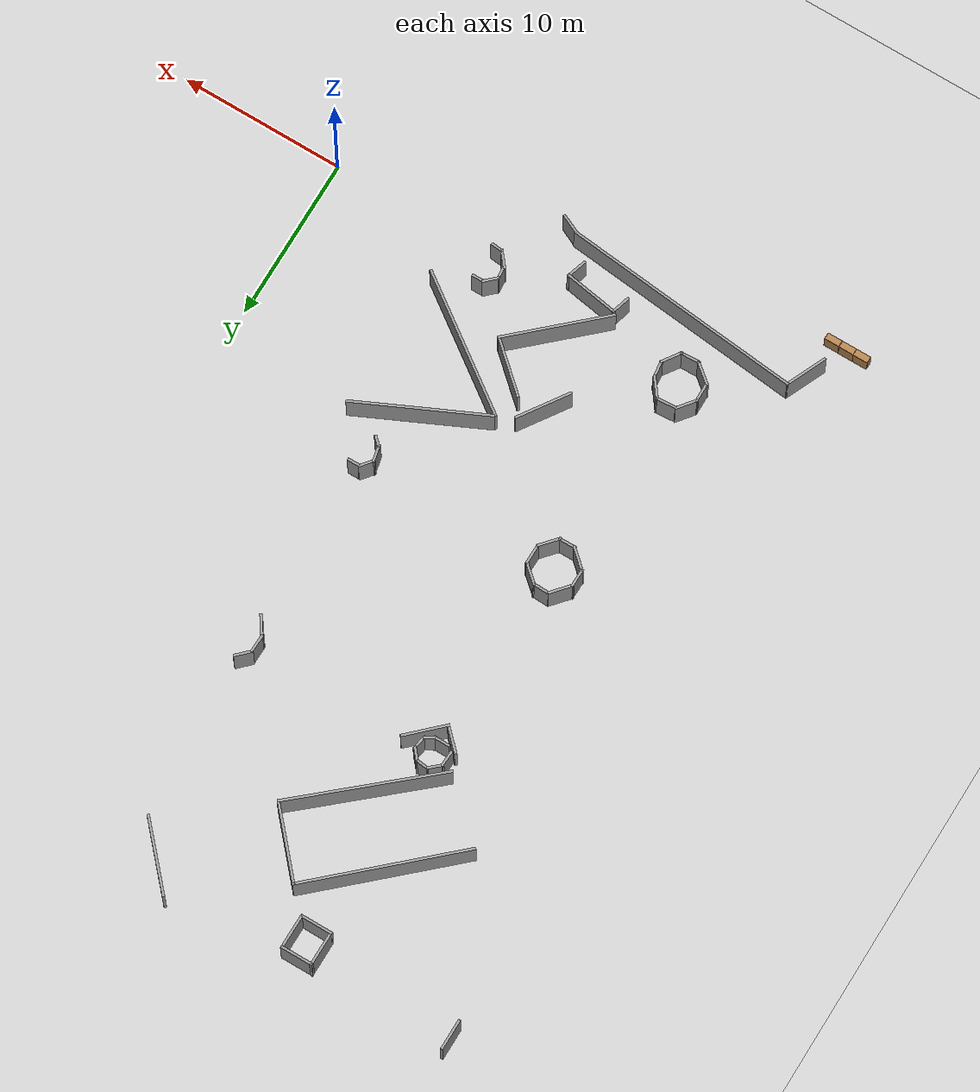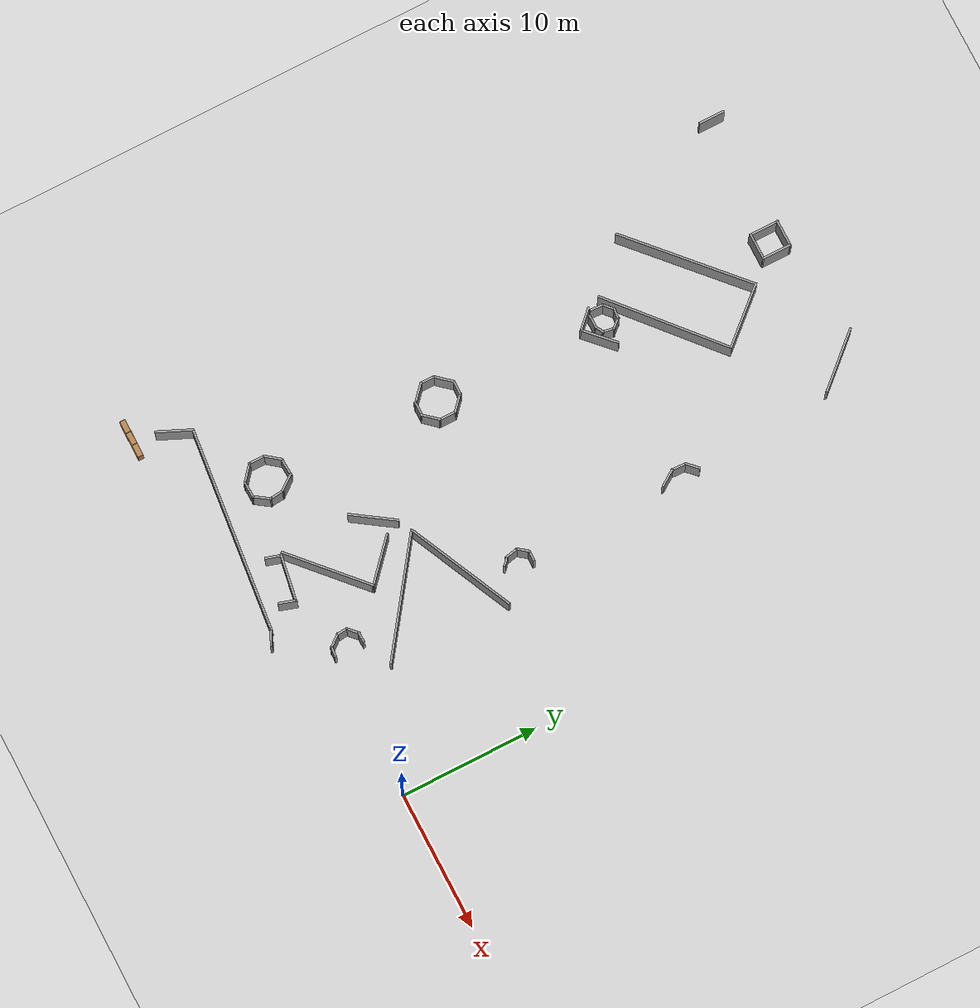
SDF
<sdf version="1.6">
 <world name="default">
  <model name="ground_plane">
   <static>1</static>
   <link name="link">
    <collision name="collision">
     <geometry><plane><normal>0 0 1</normal><size>100 100</size></plane></geometry>
     <surface><friction><ode><mu>100</mu><mu2>50</mu2></ode></friction></surface>
    </collision>
    <visual name="visual">
     <cast_shadows>0</cast_shadows>
     <geometry><plane><normal>0 0 1</normal><size>100 100</size></plane></geometry>
     <material>
      <script><uri>file://media/materials/scripts/gazebo.material</uri><name>Gazebo/Grey</name></script>
     </material>
    </visual>
   </link>
  </model>
  <model name="mall_new_reduce_size">
   <pose>-6.8092 7.5529 0 0 -0 0</pose>
   <link name="Wall_262">
    <collision name="Wall_262_Collision">
     <geometry><box><size>8.27755 0.15 2.5</size></box></geometry>
     <pose>0 0 1.25 0 -0 0</pose>
    </collision>
    <visual name="Wall_262_Visual">
     <pose>0 0 1.25 0 -0 0</pose>
     <geometry><box><size>8.27755 0.15 2.5</size></box></geometry>
     <material>
      <script><uri>file://media/materials/scripts/gazebo.material</uri><name>Gazebo/Grey</name></script>
      <ambient>1 1 1 1</ambient>
     </material>
     <meta><layer>0</layer></meta>
    </visual>
    <pose>-4.89745 2.80266 0 0 -0 0.439294</pose>
   </link>
   <link name="Wall_264">
    <collision name="Wall_264_Collision">
     <geometry><box><size>9.26002 0.15 2.5</size></box></geometry>
     <pose>0 0 1.25 0 -0 0</pose>
    </collision>
    <visual name="Wall_264_Visual">
     <pose>0 0 1.25 0 -0 0</pose>
     <geometry><box><size>9.26002 0.15 2.5</size></box></geometry>
     <material>
      <script><uri>file://media/materials/scripts/gazebo.material</uri><name>Gazebo/Grey</name></script>
      <ambient>1 1 1 1</ambient>
     </material>
     <meta><layer>0</layer></meta>
    </visual>
    <pose>-4.95834 -1.66721 0 0 -0 2.51669</pose>
   </link>
   <link name="Wall_267">
    <collision name="Wall_267_Collision">
     <geometry><box><size>0.820925 0.15 2.5</size></box></geometry>
     <pose>0 0 1.25 0 -0 0</pose>
    </collision>
    <visual name="Wall_267_Visual">
     <pose>0 0 1.25 0 -0 0</pose>
     <geometry><box><size>0.820925 0.15 2.5</size></box></geometry>
     <material>
      <script><uri>file://media/materials/scripts/gazebo.material</uri><name>Gazebo/Grey</name></script>
      <ambient>1 1 1 1</ambient>
     </material>
     <meta><layer>0</layer></meta>
    </visual>
    <pose>-4.64546 -6.23474 0 0 -0 1.67128</pose>
   </link>
   <link name="Wall_268">
    <collision name="Wall_268_Collision">
     <geometry><box><size>1.02099 0.15 2.5</size></box></geometry>
     <pose>0 0 1.25 0 -0 0</pose>
    </collision>
    <visual name="Wall_268_Visual">
     <pose>0 0 1.25 0 -0 0</pose>
     <geometry><box><size>1.02099 0.15 2.5</size></box></geometry>
     <material>
      <script><uri>file://media/materials/scripts/gazebo.material</uri><name>Gazebo/Grey</name></script>
      <ambient>1 1 1 1</ambient>
     </material>
     <meta><layer>0</layer></meta>
    </visual>
    <pose>-4.34926 -5.61512 0 0 -0 0.761586</pose>
   </link>
   <link name="Wall_269">
    <collision name="Wall_269_Collision">
     <geometry><box><size>0.764839 0.15 2.5</size></box></geometry>
     <pose>0 0 1.25 0 -0 0</pose>
    </collision>
    <visual name="Wall_269_Visual">
     <pose>0 0 1.25 0 -0 0</pose>
     <geometry><box><size>0.764839 0.15 2.5</size></box></geometry>
     <material>
      <script><uri>file://media/materials/scripts/gazebo.material</uri><name>Gazebo/Grey</name></script>
      <ambient>1 1 1 1</ambient>
     </material>
     <meta><layer>0</layer></meta>
    </visual>
    <pose>-3.71208 -5.32193 0 0 -0 0.023853</pose>
   </link>
   <link name="Wall_273">
    <collision name="Wall_273_Collision">
     <geometry><box><size>0.777136 0.15 2.5</size></box></geometry>
     <pose>0 0 1.25 0 -0 0</pose>
    </collision>
    <visual name="Wall_273_Visual">
     <pose>0 0 1.25 0 -0 0</pose>
     <geometry><box><size>0.777136 0.15 2.5</size></box></geometry>
     <material>
      <script><uri>file://media/materials/scripts/gazebo.material</uri><name>Gazebo/Grey</name></script>
      <ambient>1 1 1 1</ambient>
     </material>
     <meta><layer>0</layer></meta>
    </visual>
    <pose>-3.68436 -7.41023 0 0 -0 3.05721</pose>
   </link>
   <link name="Wall_274">
    <collision name="Wall_274_Collision">
     <geometry><box><size>1.15435 0.15 2.5</size></box></geometry>
     <pose>0 0 1.25 0 -0 0</pose>
    </collision>
    <visual name="Wall_274_Visual">
     <pose>0 0 1.25 0 -0 0</pose>
     <geometry><box><size>1.15435 0.15 2.5</size></box></geometry>
     <material>
      <script><uri>file://media/materials/scripts/gazebo.material</uri><name>Gazebo/Grey</name></script>
      <ambient>1 1 1 1</ambient>
     </material>
     <meta><layer>0</layer></meta>
    </visual>
    <pose>-4.31455 -7.00602 0 0 -0 2.25587</pose>
   </link>
   <link name="Wall_284">
    <collision name="Wall_284_Collision">
     <geometry><box><size>1.3189 0.15 2.5</size></box></geometry>
     <pose>0 0 1.25 0 -0 0</pose>
    </collision>
    <visual name="Wall_284_Visual">
     <pose>0 0 1.25 0 -0 0</pose>
     <geometry><box><size>1.3189 0.15 2.5</size></box></geometry>
     <material>
      <script><uri>file://media/materials/scripts/gazebo.material</uri><name>Gazebo/Grey</name></script>
      <ambient>1 1 1 1</ambient>
     </material>
     <meta><layer>0</layer></meta>
    </visual>
    <pose>-8.11493 -8.61894 0 0 -0 1.26497</pose>
   </link>
   <link name="Wall_285">
    <collision name="Wall_285_Collision">
     <geometry><box><size>3.37777 0.15 2.5</size></box></geometry>
     <pose>0 0 1.25 0 -0 0</pose>
    </collision>
    <visual name="Wall_285_Visual">
     <pose>0 0 1.25 0 -0 0</pose>
     <geometry><box><size>3.37777 0.15 2.5</size></box></geometry>
     <material>
      <script><uri>file://media/materials/scripts/gazebo.material</uri><name>Gazebo/Grey</name></script>
      <ambient>1 1 1 1</ambient>
     </material>
     <meta><layer>0</layer></meta>
    </visual>
    <pose>-9.56079 -7.81441 0 0 -0 2.97862</pose>
   </link>
   <link name="Wall_286">
    <collision name="Wall_286_Collision">
     <geometry><box><size>1.21161 0.15 2.5</size></box></geometry>
     <pose>0 0 1.25 0 -0 0</pose>
    </collision>
    <visual name="Wall_286_Visual">
     <pose>0 0 1.25 0 -0 0</pose>
     <geometry><box><size>1.21161 0.15 2.5</size></box></geometry>
     <material>
      <script><uri>file://media/materials/scripts/gazebo.material</uri><name>Gazebo/Grey</name></script>
      <ambient>1 1 1 1</ambient>
     </material>
     <meta><layer>0</layer></meta>
    </visual>
    <pose>-11.2883 -8.06181 0 0 -0 -1.85667</pose>
   </link>
   <link name="Wall_289">
    <collision name="Wall_289_Collision">
     <geometry><box><size>3.74389 0.15 2.5</size></box></geometry>
     <pose>0 0 1.25 0 -0 0</pose>
    </collision>
    <visual name="Wall_289_Visual">
     <pose>0 0 1.25 0 -0 0</pose>
     <geometry><box><size>3.74389 0.15 2.5</size></box></geometry>
     <material>
      <script><uri>file://media/materials/scripts/gazebo.material</uri><name>Gazebo/Grey</name></script>
      <ambient>1 1 1 1</ambient>
     </material>
     <meta><layer>0</layer></meta>
    </visual>
    <pose>-7.8177 -1.7822 0 0 -0 -0.730552</pose>
   </link>
   <link name="Wall_293">
    <collision name="Wall_293_Collision">
     <geometry><box><size>6.69055 0.15 2.5</size></box></geometry>
     <pose>0 0 1.25 0 -0 0</pose>
    </collision>
    <visual name="Wall_293_Visual">
     <pose>0 0 1.25 0 -0 0</pose>
     <geometry><box><size>6.69055 0.15 2.5</size></box></geometry>
     <material>
      <script><uri>file://media/materials/scripts/gazebo.material</uri><name>Gazebo/Grey</name></script>
      <ambient>1 1 1 1</ambient>
     </material>
     <meta><layer>0</layer></meta>
    </visual>
    <pose>-8.88827 -5.19299 0 0 -0 -2.39885</pose>
   </link>
   <link name="Wall_296">
    <collision name="Wall_296_Collision">
     <geometry><box><size>3.4822 0.15 2.5</size></box></geometry>
     <pose>0 0 1.25 0 -0 0</pose>
    </collision>
    <visual name="Wall_296_Visual">
     <pose>0 0 1.25 0 -0 0</pose>
     <geometry><box><size>3.4822 0.15 2.5</size></box></geometry>
     <material>
      <script><uri>file://media/materials/scripts/gazebo.material</uri><name>Gazebo/Grey</name></script>
      <ambient>1 1 1 1</ambient>
     </material>
     <meta><layer>0</layer></meta>
    </visual>
    <pose>-10.6311 -0.878716 0 0 -0 -2.16478</pose>
   </link>
   <link name="Wall_299">
    <collision name="Wall_299_Collision">
     <geometry><box><size>1.25244 0.15 2.5</size></box></geometry>
     <pose>0 0 1.25 0 -0 0</pose>
    </collision>
    <visual name="Wall_299_Visual">
     <pose>0 0 1.25 0 -0 0</pose>
     <geometry><box><size>1.25244 0.15 2.5</size></box></geometry>
     <material>
      <script><uri>file://media/materials/scripts/gazebo.material</uri><name>Gazebo/Grey</name></script>
      <ambient>1 1 1 1</ambient>
     </material>
     <meta><layer>0</layer></meta>
    </visual>
    <pose>-16.3634 -4.50577 0 0 -0 0.066556</pose>
   </link>
   <link name="Wall_300">
    <collision name="Wall_300_Collision">
     <geometry><box><size>1.44179 0.15 2.5</size></box></geometry>
     <pose>0 0 1.25 0 -0 0</pose>
    </collision>
    <visual name="Wall_300_Visual">
     <pose>0 0 1.25 0 -0 0</pose>
     <geometry><box><size>1.44179 0.15 2.5</size></box></geometry>
     <material>
      <script><uri>file://media/materials/scripts/gazebo.material</uri><name>Gazebo/Grey</name></script>
      <ambient>1 1 1 1</ambient>
     </material>
     <meta><layer>0</layer></meta>
    </visual>
    <pose>-15.4086 -4.98387 0 0 -0 -0.922283</pose>
   </link>
   <link name="Wall_301">
    <collision name="Wall_301_Collision">
     <geometry><box><size>1.09033 0.15 2.5</size></box></geometry>
     <pose>0 0 1.25 0 -0 0</pose>
    </collision>
    <visual name="Wall_301_Visual">
     <pose>0 0 1.25 0 -0 0</pose>
     <geometry><box><size>1.09033 0.15 2.5</size></box></geometry>
     <material>
      <script><uri>file://media/materials/scripts/gazebo.material</uri><name>Gazebo/Grey</name></script>
      <ambient>1 1 1 1</ambient>
     </material>
     <meta><layer>0</layer></meta>
    </visual>
    <pose>-14.9682 -5.95144 0 0 -0 -1.4636</pose>
   </link>
   <link name="Wall_302">
    <collision name="Wall_302_Collision">
     <geometry><box><size>1.37103 0.15 2.5</size></box></geometry>
     <pose>0 0 1.25 0 -0 0</pose>
    </collision>
    <visual name="Wall_302_Visual">
     <pose>0 0 1.25 0 -0 0</pose>
     <geometry><box><size>1.37103 0.15 2.5</size></box></geometry>
     <material>
      <script><uri>file://media/materials/scripts/gazebo.material</uri><name>Gazebo/Grey</name></script>
      <ambient>1 1 1 1</ambient>
     </material>
     <meta><layer>0</layer></meta>
    </visual>
    <pose>-15.2636 -6.93047 0 0 -0 -2.17283</pose>
   </link>
   <link name="Wall_303">
    <collision name="Wall_303_Collision">
     <geometry><box><size>1.23632 0.15 2.5</size></box></geometry>
     <pose>0 0 1.25 0 -0 0</pose>
    </collision>
    <visual name="Wall_303_Visual">
     <pose>0 0 1.25 0 -0 0</pose>
     <geometry><box><size>1.23632 0.15 2.5</size></box></geometry>
     <material>
      <script><uri>file://media/materials/scripts/gazebo.material</uri><name>Gazebo/Grey</name></script>
      <ambient>1 1 1 1</ambient>
     </material>
     <meta><layer>0</layer></meta>
    </visual>
    <pose>-16.1437 -7.44622 0 0 -0 -3.10299</pose>
   </link>
   <link name="Wall_304">
    <collision name="Wall_304_Collision">
     <geometry><box><size>1.52701 0.15 2.5</size></box></geometry>
     <pose>0 0 1.25 0 -0 0</pose>
    </collision>
    <visual name="Wall_304_Visual">
     <pose>0 0 1.25 0 -0 0</pose>
     <geometry><box><size>1.52701 0.15 2.5</size></box></geometry>
     <material>
      <script><uri>file://media/materials/scripts/gazebo.material</uri><name>Gazebo/Grey</name></script>
      <ambient>1 1 1 1</ambient>
     </material>
     <meta><layer>0</layer></meta>
    </visual>
    <pose>-17.2005 -7.03707 0 0 -0 2.45115</pose>
   </link>
   <link name="Wall_305">
    <collision name="Wall_305_Collision">
     <geometry><box><size>1.2495 0.15 2.5</size></box></geometry>
     <pose>0 0 1.25 0 -0 0</pose>
    </collision>
    <visual name="Wall_305_Visual">
     <pose>0 0 1.25 0 -0 0</pose>
     <geometry><box><size>1.2495 0.15 2.5</size></box></geometry>
     <material>
      <script><uri>file://media/materials/scripts/gazebo.material</uri><name>Gazebo/Grey</name></script>
      <ambient>1 1 1 1</ambient>
     </material>
     <meta><layer>0</layer></meta>
    </visual>
    <pose>-17.7276 -6.04885 0 0 -0 1.57925</pose>
   </link>
   <link name="Wall_306">
    <collision name="Wall_306_Collision">
     <geometry><box><size>1.3668 0.15 2.5</size></box></geometry>
     <pose>0 0 1.25 0 -0 0</pose>
    </collision>
    <visual name="Wall_306_Visual">
     <pose>0 0 1.25 0 -0 0</pose>
     <geometry><box><size>1.3668 0.15 2.5</size></box></geometry>
     <material>
      <script><uri>file://media/materials/scripts/gazebo.material</uri><name>Gazebo/Grey</name></script>
      <ambient>1 1 1 1</ambient>
     </material>
     <meta><layer>0</layer></meta>
    </visual>
    <pose>-17.3575 -5.01145 0 0 -0 0.907215</pose>
   </link>
   <link name="Wall_309">
    <collision name="Wall_309_Collision">
     <geometry><box><size>2.66375 0.15 2.5</size></box></geometry>
     <pose>0 0 1.25 0 -0 0</pose>
    </collision>
    <visual name="Wall_309_Visual">
     <pose>0 0 1.25 0 -0 0</pose>
     <geometry><box><size>2.66375 0.15 2.5</size></box></geometry>
     <material>
      <script><uri>file://media/materials/scripts/gazebo.material</uri><name>Gazebo/Grey</name></script>
      <ambient>1 1 1 1</ambient>
     </material>
     <meta><layer>0</layer></meta>
    </visual>
    <pose>-22.0492 -10.0757 0 0 -0 1.15356</pose>
   </link>
   <link name="Wall_310">
    <collision name="Wall_310_Collision">
     <geometry><box><size>14.7966 0.15 2.5</size></box></geometry>
     <pose>0 0 1.25 0 -0 0</pose>
    </collision>
    <visual name="Wall_310_Visual">
     <pose>0 0 1.25 0 -0 0</pose>
     <geometry><box><size>14.7966 0.15 2.5</size></box></geometry>
     <material>
      <script><uri>file://media/materials/scripts/gazebo.material</uri><name>Gazebo/Grey</name></script>
      <ambient>1 1 1 1</ambient>
     </material>
     <meta><layer>0</layer></meta>
    </visual>
    <pose>-14.2431 -9.68361 0 0 -0 -0.103547</pose>
   </link>
   <link name="Wall_311">
    <collision name="Wall_311_Collision">
     <geometry><box><size>1.25215 0.15 2.5</size></box></geometry>
     <pose>0 0 1.25 0 -0 0</pose>
    </collision>
    <visual name="Wall_311_Visual">
     <pose>0 0 1.25 0 -0 0</pose>
     <geometry><box><size>1.25215 0.15 2.5</size></box></geometry>
     <material>
      <script><uri>file://media/materials/scripts/gazebo.material</uri><name>Gazebo/Grey</name></script>
      <ambient>1 1 1 1</ambient>
     </material>
     <meta><layer>0</layer></meta>
    </visual>
    <pose>-6.46 -10.6998 0 0 -0 -0.437998</pose>
   </link>
   <link name="Wall_320">
    <collision name="Wall_320_Collision">
     <geometry><box><size>0.75 0.15 2.5</size></box></geometry>
     <pose>0 0 1.25 0 -0 0</pose>
    </collision>
    <visual name="Wall_320_Visual">
     <pose>0 0 1.25 0 -0 0</pose>
     <geometry><box><size>0.75 0.15 2.5</size></box></geometry>
     <material>
      <script><uri>file://media/materials/scripts/gazebo.material</uri><name>Gazebo/Grey</name></script>
      <ambient>1 1 1 1</ambient>
     </material>
     <meta><layer>0</layer></meta>
    </visual>
    <pose>-3.3723 7.36494 0 0 -0 0</pose>
   </link>
   <link name="Wall_325">
    <collision name="Wall_325_Collision">
     <geometry><box><size>0.725352 0.15 2.5</size></box></geometry>
     <pose>0 0 1.25 0 -0 0</pose>
    </collision>
    <visual name="Wall_325_Visual">
     <pose>0 0 1.25 0 -0 0</pose>
     <geometry><box><size>0.725352 0.15 2.5</size></box></geometry>
     <material>
      <script><uri>file://media/materials/scripts/gazebo.material</uri><name>Gazebo/Grey</name></script>
      <ambient>1 1 1 1</ambient>
     </material>
     <meta><layer>0</layer></meta>
    </visual>
    <pose>-3.85498 5.66037 0 0 -0 2.39175</pose>
   </link>
   <link name="Wall_326">
    <collision name="Wall_326_Collision">
     <geometry><box><size>1.06843 0.15 2.5</size></box></geometry>
     <pose>0 0 1.25 0 -0 0</pose>
    </collision>
    <visual name="Wall_326_Visual">
     <pose>0 0 1.25 0 -0 0</pose>
     <geometry><box><size>1.06843 0.15 2.5</size></box></geometry>
     <material>
      <script><uri>file://media/materials/scripts/gazebo.material</uri><name>Gazebo/Grey</name></script>
      <ambient>1 1 1 1</ambient>
     </material>
     <meta><layer>0</layer></meta>
    </visual>
    <pose>-4.18171 6.28601 0 0 -0 1.78347</pose>
   </link>
   <link name="Wall_327">
    <collision name="Wall_327_Collision">
     <geometry><box><size>0.999026 0.15 2.5</size></box></geometry>
     <pose>0 0 1.25 0 -0 0</pose>
    </collision>
    <visual name="Wall_327_Visual">
     <pose>0 0 1.25 0 -0 0</pose>
     <geometry><box><size>0.999026 0.15 2.5</size></box></geometry>
     <material>
      <script><uri>file://media/materials/scripts/gazebo.material</uri><name>Gazebo/Grey</name></script>
      <ambient>1 1 1 1</ambient>
     </material>
     <meta><layer>0</layer></meta>
    </visual>
    <pose>-4.0137 7.04728 0 0 -0 0.8968</pose>
   </link>
   <link name="Wall_330">
    <collision name="Wall_330_Collision">
     <geometry><box><size>1.01977 0.15 2.5</size></box></geometry>
     <pose>0 0 1.25 0 -0 0</pose>
    </collision>
    <visual name="Wall_330_Visual">
     <pose>0 0 1.25 0 -0 0</pose>
     <geometry><box><size>1.01977 0.15 2.5</size></box></geometry>
     <material>
      <script><uri>file://media/materials/scripts/gazebo.material</uri><name>Gazebo/Grey</name></script>
      <ambient>1 1 1 1</ambient>
     </material>
     <meta><layer>0</layer></meta>
    </visual>
    <pose>-15.936 8.2086 0 0 -0 -0.033263</pose>
   </link>
   <link name="Wall_331">
    <collision name="Wall_331_Collision">
     <geometry><box><size>1.45443 0.15 2.5</size></box></geometry>
     <pose>0 0 1.25 0 -0 0</pose>
    </collision>
    <visual name="Wall_331_Visual">
     <pose>0 0 1.25 0 -0 0</pose>
     <geometry><box><size>1.45443 0.15 2.5</size></box></geometry>
     <material>
      <script><uri>file://media/materials/scripts/gazebo.material</uri><name>Gazebo/Grey</name></script>
      <ambient>1 1 1 1</ambient>
     </material>
     <meta><layer>0</layer></meta>
    </visual>
    <pose>-15.0144 7.76987 0 0 -0 -0.727873</pose>
   </link>
   <link name="Wall_332">
    <collision name="Wall_332_Collision">
     <geometry><box><size>1.29894 0.15 2.5</size></box></geometry>
     <pose>0 0 1.25 0 -0 0</pose>
    </collision>
    <visual name="Wall_332_Visual">
     <pose>0 0 1.25 0 -0 0</pose>
     <geometry><box><size>1.29894 0.15 2.5</size></box></geometry>
     <material>
      <script><uri>file://media/materials/scripts/gazebo.material</uri><name>Gazebo/Grey</name></script>
      <ambient>1 1 1 1</ambient>
     </material>
     <meta><layer>0</layer></meta>
    </visual>
    <pose>-14.5323 6.75187 0 0 -0 -1.57919</pose>
   </link>
   <link name="Wall_333">
    <collision name="Wall_333_Collision">
     <geometry><box><size>1.40407 0.15 2.5</size></box></geometry>
     <pose>0 0 1.25 0 -0 0</pose>
    </collision>
    <visual name="Wall_333_Visual">
     <pose>0 0 1.25 0 -0 0</pose>
     <geometry><box><size>1.40407 0.15 2.5</size></box></geometry>
     <material>
      <script><uri>file://media/materials/scripts/gazebo.material</uri><name>Gazebo/Grey</name></script>
      <ambient>1 1 1 1</ambient>
     </material>
     <meta><layer>0</layer></meta>
    </visual>
    <pose>-14.9612 5.70636 0 0 -0 -2.29237</pose>
   </link>
   <link name="Wall_334">
    <collision name="Wall_334_Collision">
     <geometry><box><size>1.10611 0.15 2.5</size></box></geometry>
     <pose>0 0 1.25 0 -0 0</pose>
    </collision>
    <visual name="Wall_334_Visual">
     <pose>0 0 1.25 0 -0 0</pose>
     <geometry><box><size>1.10611 0.15 2.5</size></box></geometry>
     <material>
      <script><uri>file://media/materials/scripts/gazebo.material</uri><name>Gazebo/Grey</name></script>
      <ambient>1 1 1 1</ambient>
     </material>
     <meta><layer>0</layer></meta>
    </visual>
    <pose>-15.8537 5.24013 0 0 -0 -3.13151</pose>
   </link>
   <link name="Wall_335">
    <collision name="Wall_335_Collision">
     <geometry><box><size>1.56516 0.15 2.5</size></box></geometry>
     <pose>0 0 1.25 0 -0 0</pose>
    </collision>
    <visual name="Wall_335_Visual">
     <pose>0 0 1.25 0 -0 0</pose>
     <geometry><box><size>1.56516 0.15 2.5</size></box></geometry>
     <material>
      <script><uri>file://media/materials/scripts/gazebo.material</uri><name>Gazebo/Grey</name></script>
      <ambient>1 1 1 1</ambient>
     </material>
     <meta><layer>0</layer></meta>
    </visual>
    <pose>-16.8295 5.70779 0 0 -0 2.41041</pose>
   </link>
   <link name="Wall_336">
    <collision name="Wall_336_Collision">
     <geometry><box><size>1.15225 0.15 2.5</size></box></geometry>
     <pose>0 0 1.25 0 -0 0</pose>
    </collision>
    <visual name="Wall_336_Visual">
     <pose>0 0 1.25 0 -0 0</pose>
     <geometry><box><size>1.15225 0.15 2.5</size></box></geometry>
     <material>
      <script><uri>file://media/materials/scripts/gazebo.material</uri><name>Gazebo/Grey</name></script>
      <ambient>1 1 1 1</ambient>
     </material>
     <meta><layer>0</layer></meta>
    </visual>
    <pose>-17.3514 6.67174 0 0 -0 1.56118</pose>
   </link>
   <link name="Wall_337">
    <collision name="Wall_337_Collision">
     <geometry><box><size>1.51537 0.15 2.5</size></box></geometry>
     <pose>0 0 1.25 0 -0 0</pose>
    </collision>
    <visual name="Wall_337_Visual">
     <pose>0 0 1.25 0 -0 0</pose>
     <geometry><box><size>1.51537 0.15 2.5</size></box></geometry>
     <material>
      <script><uri>file://media/materials/scripts/gazebo.material</uri><name>Gazebo/Grey</name></script>
      <ambient>1 1 1 1</ambient>
     </material>
     <meta><layer>0</layer></meta>
    </visual>
    <pose>-16.9005 7.68 0 0 -0 0.858721</pose>
   </link>
   <link name="Wall_42">
    <collision name="Wall_42_Collision">
     <geometry><box><size>1.90642 0.15 2.5</size></box></geometry>
     <pose>0 0 1.25 0 -0 0</pose>
    </collision>
    <visual name="Wall_42_Visual">
     <pose>0 0 1.25 0 -0 0</pose>
     <geometry><box><size>1.90642 0.15 2.5</size></box></geometry>
     <material>
      <script><uri>file://media/materials/scripts/gazebo.material</uri><name>Gazebo/Grey</name></script>
      <ambient>1 1 1 1</ambient>
     </material>
     <meta><layer>0</layer></meta>
    </visual>
    <pose>-24.7208 32.1883 0 0 -0 1.57103</pose>
   </link>
   <link name="Wall_45">
    <collision name="Wall_45_Collision">
     <geometry><box><size>2.19239 0.15 2.5</size></box></geometry>
     <pose>0 0 1.25 0 -0 0</pose>
    </collision>
    <visual name="Wall_45_Visual">
     <pose>0 0 1.25 0 -0 0</pose>
     <geometry><box><size>2.19239 0.15 2.5</size></box></geometry>
     <material>
      <script><uri>file://media/materials/scripts/gazebo.material</uri><name>Gazebo/Grey</name></script>
      <ambient>1 1 1 1</ambient>
     </material>
     <meta><layer>0</layer></meta>
    </visual>
    <pose>-16.247 31.7587 0 0 -0 -1.5708</pose>
   </link>
   <link name="Wall_46">
    <collision name="Wall_46_Collision">
     <geometry><box><size>2 0.15 2.5</size></box></geometry>
     <pose>0 0 1.25 0 -0 0</pose>
    </collision>
    <visual name="Wall_46_Visual">
     <pose>0 0 1.25 0 -0 0</pose>
     <geometry><box><size>2 0.15 2.5</size></box></geometry>
     <material>
      <script><uri>file://media/materials/scripts/gazebo.material</uri><name>Gazebo/Grey</name></script>
      <ambient>1 1 1 1</ambient>
     </material>
     <meta><layer>0</layer></meta>
    </visual>
    <pose>-15.322 30.7375 0 0 -0 0</pose>
   </link>
   <link name="Wall_47">
    <collision name="Wall_47_Collision">
     <geometry><box><size>2.17492 0.15 2.5</size></box></geometry>
     <pose>0 0 1.25 0 -0 0</pose>
    </collision>
    <visual name="Wall_47_Visual">
     <pose>0 0 1.25 0 -0 0</pose>
     <geometry><box><size>2.17492 0.15 2.5</size></box></geometry>
     <material>
      <script><uri>file://media/materials/scripts/gazebo.material</uri><name>Gazebo/Grey</name></script>
      <ambient>1 1 1 1</ambient>
     </material>
     <meta><layer>0</layer></meta>
    </visual>
    <pose>-14.3927 31.7499 0 0 -0 1.56648</pose>
   </link>
   <link name="Wall_48">
    <collision name="Wall_48_Collision">
     <geometry><box><size>2.0172 0.15 2.5</size></box></geometry>
     <pose>0 0 1.25 0 -0 0</pose>
    </collision>
    <visual name="Wall_48_Visual">
     <pose>0 0 1.25 0 -0 0</pose>
     <geometry><box><size>2.0172 0.15 2.5</size></box></geometry>
     <material>
      <script><uri>file://media/materials/scripts/gazebo.material</uri><name>Gazebo/Grey</name></script>
      <ambient>1 1 1 1</ambient>
     </material>
     <meta><layer>0</layer></meta>
    </visual>
    <pose>-15.3219 32.7668 0 0 -0 -3.13691</pose>
   </link>
   <link name="Wall_53">
    <collision name="Wall_53_Collision">
     <geometry><box><size>4.7206 0.15 2.5</size></box></geometry>
     <pose>0 0 1.25 0 -0 0</pose>
    </collision>
    <visual name="Wall_53_Visual">
     <pose>0 0 1.25 0 -0 0</pose>
     <geometry><box><size>4.7206 0.15 2.5</size></box></geometry>
     <material>
      <script><uri>file://media/materials/scripts/gazebo.material</uri><name>Gazebo/Grey</name></script>
      <ambient>1 1 1 1</ambient>
     </material>
     <meta><layer>0</layer></meta>
    </visual>
    <pose>-5.84483 31.9838 0 0 -0 -0.834461</pose>
   </link>
   <link name="Wall_57">
    <collision name="Wall_57_Collision">
     <geometry><box><size>10.1653 0.15 2.5</size></box></geometry>
     <pose>0 0 1.25 0 -0 0</pose>
    </collision>
    <visual name="Wall_57_Visual">
     <pose>0 0 1.25 0 -0 0</pose>
     <geometry><box><size>10.1653 0.15 2.5</size></box></geometry>
     <material>
      <script><uri>file://media/materials/scripts/gazebo.material</uri><name>Gazebo/Grey</name></script>
      <ambient>1 1 1 1</ambient>
     </material>
     <meta><layer>0</layer></meta>
    </visual>
    <pose>-16.7712 26.0648 0 0 -0 0.74156</pose>
   </link>
   <link name="Wall_58">
    <collision name="Wall_58_Collision">
     <geometry><box><size>4.86048 0.15 2.5</size></box></geometry>
     <pose>0 0 1.25 0 -0 0</pose>
    </collision>
    <visual name="Wall_58_Visual">
     <pose>0 0 1.25 0 -0 0</pose>
     <geometry><box><size>4.86048 0.15 2.5</size></box></geometry>
     <material>
      <script><uri>file://media/materials/scripts/gazebo.material</uri><name>Gazebo/Grey</name></script>
      <ambient>1 1 1 1</ambient>
     </material>
     <meta><layer>0</layer></meta>
    </visual>
    <pose>-11.5025 27.6865 0 0 -0 -0.844353</pose>
   </link>
   <link name="Wall_59">
    <collision name="Wall_59_Collision">
     <geometry><box><size>9.7239 0.15 2.5</size></box></geometry>
     <pose>0 0 1.25 0 -0 0</pose>
    </collision>
    <visual name="Wall_59_Visual">
     <pose>0 0 1.25 0 -0 0</pose>
     <geometry><box><size>9.7239 0.15 2.5</size></box></geometry>
     <material>
      <script><uri>file://media/materials/scripts/gazebo.material</uri><name>Gazebo/Grey</name></script>
      <ambient>1 1 1 1</ambient>
     </material>
     <meta><layer>0</layer></meta>
    </visual>
    <pose>-13.5451 22.7671 0 0 -0 -2.42416</pose>
   </link>
   <link name="Wall_62">
    <collision name="Wall_62_Collision">
     <geometry><box><size>1.75 0.15 2.5</size></box></geometry>
     <pose>0 0 1.25 0 -0 0</pose>
    </collision>
    <visual name="Wall_62_Visual">
     <pose>0 0 1.25 0 -0 0</pose>
     <geometry><box><size>1.75 0.15 2.5</size></box></geometry>
     <material>
      <script><uri>file://media/materials/scripts/gazebo.material</uri><name>Gazebo/Grey</name></script>
      <ambient>1 1 1 1</ambient>
     </material>
     <meta><layer>0</layer></meta>
    </visual>
    <pose>-16.2089 18.0457 0 0 -0 -0.785398</pose>
   </link>
   <link name="Wall_63">
    <collision name="Wall_63_Collision">
     <geometry><box><size>2.76682 0.15 2.5</size></box></geometry>
     <pose>0 0 1.25 0 -0 0</pose>
    </collision>
    <visual name="Wall_63_Visual">
     <pose>0 0 1.25 0 -0 0</pose>
     <geometry><box><size>2.76682 0.15 2.5</size></box></geometry>
     <material>
      <script><uri>file://media/materials/scripts/gazebo.material</uri><name>Gazebo/Grey</name></script>
      <ambient>1 1 1 1</ambient>
     </material>
     <meta><layer>0</layer></meta>
    </visual>
    <pose>-14.7009 18.3877 0 0 -0 0.766646</pose>
   </link>
   <link name="Wall_66">
    <collision name="Wall_66_Collision">
     <geometry><box><size>1 0.15 2.5</size></box></geometry>
     <pose>0 0 1.25 0 -0 0</pose>
    </collision>
    <visual name="Wall_66_Visual">
     <pose>0 0 1.25 0 -0 0</pose>
     <geometry><box><size>1 0.15 2.5</size></box></geometry>
     <material>
      <script><uri>file://media/materials/scripts/gazebo.material</uri><name>Gazebo/Grey</name></script>
      <ambient>1 1 1 1</ambient>
     </material>
     <meta><layer>0</layer></meta>
    </visual>
    <pose>-15.806 18.4495 0 0 -0 0</pose>
   </link>
   <link name="Wall_67">
    <collision name="Wall_67_Collision">
     <geometry><box><size>0.75 0.15 2.5</size></box></geometry>
     <pose>0 0 1.25 0 -0 0</pose>
    </collision>
    <visual name="Wall_67_Visual">
     <pose>0 0 1.25 0 -0 0</pose>
     <geometry><box><size>0.75 0.15 2.5</size></box></geometry>
     <material>
      <script><uri>file://media/materials/scripts/gazebo.material</uri><name>Gazebo/Grey</name></script>
      <ambient>1 1 1 1</ambient>
     </material>
     <meta><layer>0</layer></meta>
    </visual>
    <pose>-15.1212 18.5995 0 0 -0 0.523599</pose>
   </link>
   <link name="Wall_68">
    <collision name="Wall_68_Collision">
     <geometry><box><size>0.923783 0.15 2.5</size></box></geometry>
     <pose>0 0 1.25 0 -0 0</pose>
    </collision>
    <visual name="Wall_68_Visual">
     <pose>0 0 1.25 0 -0 0</pose>
     <geometry><box><size>0.923783 0.15 2.5</size></box></geometry>
     <material>
      <script><uri>file://media/materials/scripts/gazebo.material</uri><name>Gazebo/Grey</name></script>
      <ambient>1 1 1 1</ambient>
     </material>
     <meta><layer>0</layer></meta>
    </visual>
    <pose>-14.7977 19.1311 0 0 -0 1.4053</pose>
   </link>
   <link name="Wall_69">
    <collision name="Wall_69_Collision">
     <geometry><box><size>0.920137 0.15 2.5</size></box></geometry>
     <pose>0 0 1.25 0 -0 0</pose>
    </collision>
    <visual name="Wall_69_Visual">
     <pose>0 0 1.25 0 -0 0</pose>
     <geometry><box><size>0.920137 0.15 2.5</size></box></geometry>
     <material>
      <script><uri>file://media/materials/scripts/gazebo.material</uri><name>Gazebo/Grey</name></script>
      <ambient>1 1 1 1</ambient>
     </material>
     <meta><layer>0</layer></meta>
    </visual>
    <pose>-14.9845 19.7936 0 0 -0 2.27931</pose>
   </link>
   <link name="Wall_70">
    <collision name="Wall_70_Collision">
     <geometry><box><size>0.82206 0.15 2.5</size></box></geometry>
     <pose>0 0 1.25 0 -0 0</pose>
    </collision>
    <visual name="Wall_70_Visual">
     <pose>0 0 1.25 0 -0 0</pose>
     <geometry><box><size>0.82206 0.15 2.5</size></box></geometry>
     <material>
      <script><uri>file://media/materials/scripts/gazebo.material</uri><name>Gazebo/Grey</name></script>
      <ambient>1 1 1 1</ambient>
     </material>
     <meta><layer>0</layer></meta>
    </visual>
    <pose>-15.581 20.1082 0 0 -0 3.04075</pose>
   </link>
   <link name="Wall_71">
    <collision name="Wall_71_Collision">
     <geometry><box><size>0.984159 0.15 2.5</size></box></geometry>
     <pose>0 0 1.25 0 -0 0</pose>
    </collision>
    <visual name="Wall_71_Visual">
     <pose>0 0 1.25 0 -0 0</pose>
     <geometry><box><size>0.984159 0.15 2.5</size></box></geometry>
     <material>
      <script><uri>file://media/materials/scripts/gazebo.material</uri><name>Gazebo/Grey</name></script>
      <ambient>1 1 1 1</ambient>
     </material>
     <meta><layer>0</layer></meta>
    </visual>
    <pose>-16.2277 19.8542 0 0 -0 -2.41751</pose>
   </link>
   <link name="Wall_72">
    <collision name="Wall_72_Collision">
     <geometry><box><size>1.02754 0.15 2.5</size></box></geometry>
     <pose>0 0 1.25 0 -0 0</pose>
    </collision>
    <visual name="Wall_72_Visual">
     <pose>0 0 1.25 0 -0 0</pose>
     <geometry><box><size>1.02754 0.15 2.5</size></box></geometry>
     <material>
      <script><uri>file://media/materials/scripts/gazebo.material</uri><name>Gazebo/Grey</name></script>
      <ambient>1 1 1 1</ambient>
     </material>
     <meta><layer>0</layer></meta>
    </visual>
    <pose>-16.5528 19.1394 0 0 -0 -1.62581</pose>
   </link>
   <link name="Wall_80">
    <collision name="Wall_80_Collision">
     <geometry><box><size>1.1209 0.15 2.5</size></box></geometry>
     <pose>0 0 1.25 0 -0 0</pose>
    </collision>
    <visual name="Wall_80_Visual">
     <pose>0 0 1.25 0 -0 0</pose>
     <geometry><box><size>1.1209 0.15 2.5</size></box></geometry>
     <material>
      <script><uri>file://media/materials/scripts/gazebo.material</uri><name>Gazebo/Grey</name></script>
      <ambient>1 1 1 1</ambient>
     </material>
     <meta><layer>0</layer></meta>
    </visual>
    <pose>-3.91038 19.8251 0 0 -0 -2.36253</pose>
   </link>
   <link name="Wall_81">
    <collision name="Wall_81_Collision">
     <geometry><box><size>1.11992 0.15 2.5</size></box></geometry>
     <pose>0 0 1.25 0 -0 0</pose>
    </collision>
    <visual name="Wall_81_Visual">
     <pose>0 0 1.25 0 -0 0</pose>
     <geometry><box><size>1.11992 0.15 2.5</size></box></geometry>
     <material>
      <script><uri>file://media/materials/scripts/gazebo.material</uri><name>Gazebo/Grey</name></script>
      <ambient>1 1 1 1</ambient>
     </material>
     <meta><layer>0</layer></meta>
    </visual>
    <pose>-4.26885 18.9471 0 0 -0 -1.5977</pose>
   </link>
   <link name="Wall_82">
    <collision name="Wall_82_Collision">
     <geometry><box><size>1.37559 0.15 2.5</size></box></geometry>
     <pose>0 0 1.25 0 -0 0</pose>
    </collision>
    <visual name="Wall_82_Visual">
     <pose>0 0 1.25 0 -0 0</pose>
     <geometry><box><size>1.37559 0.15 2.5</size></box></geometry>
     <material>
      <script><uri>file://media/materials/scripts/gazebo.material</uri><name>Gazebo/Grey</name></script>
      <ambient>1 1 1 1</ambient>
     </material>
     <meta><layer>0</layer></meta>
    </visual>
    <pose>-3.93733 17.9642 0 0 -0 -0.973652</pose>
   </link>
   <static>1</static>
  </model>
  <model name="bookshelf_22">
   <static>1</static>
   <link name="link">
    <inertial><mass>1</mass></inertial>
    <collision name="back">
     <pose>0 0.005 0.6 0 -0 0</pose>
     <geometry><box><size>0.9 0.01 1.2</size></box></geometry>
    </collision>
    <visual name="visual1">
     <pose>0 0.005 0.6 0 -0 0</pose>
     <geometry><box><size>0.9 0.01 1.2</size></box></geometry>
     <material>
      <script><uri>file://media/materials/scripts/gazebo.material</uri><name>Gazebo/Wood</name></script>
     </material>
    </visual>
    <collision name="left_side">
     <pose>0.45 -0.195 0.6 0 -0 0</pose>
     <geometry><box><size>0.02 0.4 1.2</size></box></geometry>
    </collision>
    <visual name="visual2">
     <pose>0.45 -0.195 0.6 0 -0 0</pose>
     <geometry><box><size>0.02 0.4 1.2</size></box></geometry>
     <material>
      <script><uri>file://media/materials/scripts/gazebo.material</uri><name>Gazebo/Wood</name></script>
     </material>
    </visual>
    <collision name="right_side">
     <pose>-0.45 -0.195 0.6 0 -0 0</pose>
     <geometry><box><size>0.02 0.4 1.2</size></box></geometry>
    </collision>
    <visual name="visual3">
     <pose>-0.45 -0.195 0.6 0 -0 0</pose>
     <geometry><box><size>0.02 0.4 1.2</size></box></geometry>
     <material>
      <script><uri>file://media/materials/scripts/gazebo.material</uri><name>Gazebo/Wood</name></script>
     </material>
    </visual>
    <collision name="bottom">
     <pose>0 -0.195 0.03 0 -0 0</pose>
     <geometry><box><size>0.88 0.4 0.06</size></box></geometry>
    </collision>
    <visual name="visual4">
     <pose>0 -0.195 0.03 0 -0 0</pose>
     <geometry><box><size>0.88 0.4 0.06</size></box></geometry>
     <material>
      <script><uri>file://media/materials/scripts/gazebo.material</uri><name>Gazebo/Wood</name></script>
     </material>
    </visual>
    <collision name="top">
     <pose>0 -0.195 1.19 0 -0 0</pose>
     <geometry><box><size>0.88 0.4 0.02</size></box></geometry>
    </collision>
    <visual name="visual5">
     <pose>0 -0.195 1.19 0 -0 0</pose>
     <geometry><box><size>0.88 0.4 0.02</size></box></geometry>
     <material>
      <script><uri>file://media/materials/scripts/gazebo.material</uri><name>Gazebo/Wood</name></script>
     </material>
    </visual>
    <collision name="low_shelf">
     <pose>0 -0.195 0.43 0 -0 0</pose>
     <geometry><box><size>0.88 0.4 0.02</size></box></geometry>
    </collision>
    <visual name="visual6">
     <pose>0 -0.195 0.43 0 -0 0</pose>
     <geometry><box><size>0.88 0.4 0.02</size></box></geometry>
     <material>
      <script><uri>file://media/materials/scripts/gazebo.material</uri><name>Gazebo/Wood</name></script>
     </material>
    </visual>
    <collision name="high_shelf">
     <pose>0 -0.195 0.8 0 -0 0</pose>
     <geometry><box><size>0.88 0.4 0.02</size></box></geometry>
    </collision>
    <visual name="visual7">
     <pose>0 -0.195 0.8 0 -0 0</pose>
     <geometry><box><size>0.88 0.4 0.02</size></box></geometry>
     <material>
      <script><uri>file://media/materials/scripts/gazebo.material</uri><name>Gazebo/Wood</name></script>
     </material>
    </visual>
   </link>
   <pose>-30.9034 -5.08029 0 0 -0 0</pose>
  </model>
  <model name="bookshelf_23">
   <static>1</static>
   <link name="link">
    <inertial><mass>1</mass></inertial>
    <collision name="back">
     <pose>0 0.005 0.6 0 -0 0</pose>
     <geometry><box><size>0.9 0.01 1.2</size></box></geometry>
    </collision>
    <visual name="visual1">
     <pose>0 0.005 0.6 0 -0 0</pose>
     <geometry><box><size>0.9 0.01 1.2</size></box></geometry>
     <material>
      <script><uri>file://media/materials/scripts/gazebo.material</uri><name>Gazebo/Wood</name></script>
     </material>
    </visual>
    <collision name="left_side">
     <pose>0.45 -0.195 0.6 0 -0 0</pose>
     <geometry><box><size>0.02 0.4 1.2</size></box></geometry>
    </collision>
    <visual name="visual2">
     <pose>0.45 -0.195 0.6 0 -0 0</pose>
     <geometry><box><size>0.02 0.4 1.2</size></box></geometry>
     <material>
      <script><uri>file://media/materials/scripts/gazebo.material</uri><name>Gazebo/Wood</name></script>
     </material>
    </visual>
    <collision name="right_side">
     <pose>-0.45 -0.195 0.6 0 -0 0</pose>
     <geometry><box><size>0.02 0.4 1.2</size></box></geometry>
    </collision>
    <visual name="visual3">
     <pose>-0.45 -0.195 0.6 0 -0 0</pose>
     <geometry><box><size>0.02 0.4 1.2</size></box></geometry>
     <material>
      <script><uri>file://media/materials/scripts/gazebo.material</uri><name>Gazebo/Wood</name></script>
     </material>
    </visual>
    <collision name="bottom">
     <pose>0 -0.195 0.03 0 -0 0</pose>
     <geometry><box><size>0.88 0.4 0.06</size></box></geometry>
    </collision>
    <visual name="visual4">
     <pose>0 -0.195 0.03 0 -0 0</pose>
     <geometry><box><size>0.88 0.4 0.06</size></box></geometry>
     <material>
      <script><uri>file://media/materials/scripts/gazebo.material</uri><name>Gazebo/Wood</name></script>
     </material>
    </visual>
    <collision name="top">
     <pose>0 -0.195 1.19 0 -0 0</pose>
     <geometry><box><size>0.88 0.4 0.02</size></box></geometry>
    </collision>
    <visual name="visual5">
     <pose>0 -0.195 1.19 0 -0 0</pose>
     <geometry><box><size>0.88 0.4 0.02</size></box></geometry>
     <material>
      <script><uri>file://media/materials/scripts/gazebo.material</uri><name>Gazebo/Wood</name></script>
     </material>
    </visual>
    <collision name="low_shelf">
     <pose>0 -0.195 0.43 0 -0 0</pose>
     <geometry><box><size>0.88 0.4 0.02</size></box></geometry>
    </collision>
    <visual name="visual6">
     <pose>0 -0.195 0.43 0 -0 0</pose>
     <geometry><box><size>0.88 0.4 0.02</size></box></geometry>
     <material>
      <script><uri>file://media/materials/scripts/gazebo.material</uri><name>Gazebo/Wood</name></script>
     </material>
    </visual>
    <collision name="high_shelf">
     <pose>0 -0.195 0.8 0 -0 0</pose>
     <geometry><box><size>0.88 0.4 0.02</size></box></geometry>
    </collision>
    <visual name="visual7">
     <pose>0 -0.195 0.8 0 -0 0</pose>
     <geometry><box><size>0.88 0.4 0.02</size></box></geometry>
     <material>
      <script><uri>file://media/materials/scripts/gazebo.material</uri><name>Gazebo/Wood</name></script>
     </material>
    </visual>
   </link>
   <pose>-29.9842 -5.08083 0 0 -0 0</pose>
  </model>
  <model name="bookshelf_24">
   <static>1</static>
   <link name="link">
    <inertial><mass>1</mass></inertial>
    <collision name="back">
     <pose>0 0.005 0.6 0 -0 0</pose>
     <geometry><box><size>0.9 0.01 1.2</size></box></geometry>
    </collision>
    <visual name="visual1">
     <pose>0 0.005 0.6 0 -0 0</pose>
     <geometry><box><size>0.9 0.01 1.2</size></box></geometry>
     <material>
      <script><uri>file://media/materials/scripts/gazebo.material</uri><name>Gazebo/Wood</name></script>
     </material>
    </visual>
    <collision name="left_side">
     <pose>0.45 -0.195 0.6 0 -0 0</pose>
     <geometry><box><size>0.02 0.4 1.2</size></box></geometry>
    </collision>
    <visual name="visual2">
     <pose>0.45 -0.195 0.6 0 -0 0</pose>
     <geometry><box><size>0.02 0.4 1.2</size></box></geometry>
     <material>
      <script><uri>file://media/materials/scripts/gazebo.material</uri><name>Gazebo/Wood</name></script>
     </material>
    </visual>
    <collision name="right_side">
     <pose>-0.45 -0.195 0.6 0 -0 0</pose>
     <geometry><box><size>0.02 0.4 1.2</size></box></geometry>
    </collision>
    <visual name="visual3">
     <pose>-0.45 -0.195 0.6 0 -0 0</pose>
     <geometry><box><size>0.02 0.4 1.2</size></box></geometry>
     <material>
      <script><uri>file://media/materials/scripts/gazebo.material</uri><name>Gazebo/Wood</name></script>
     </material>
    </visual>
    <collision name="bottom">
     <pose>0 -0.195 0.03 0 -0 0</pose>
     <geometry><box><size>0.88 0.4 0.06</size></box></geometry>
    </collision>
    <visual name="visual4">
     <pose>0 -0.195 0.03 0 -0 0</pose>
     <geometry><box><size>0.88 0.4 0.06</size></box></geometry>
     <material>
      <script><uri>file://media/materials/scripts/gazebo.material</uri><name>Gazebo/Wood</name></script>
     </material>
    </visual>
    <collision name="top">
     <pose>0 -0.195 1.19 0 -0 0</pose>
     <geometry><box><size>0.88 0.4 0.02</size></box></geometry>
    </collision>
    <visual name="visual5">
     <pose>0 -0.195 1.19 0 -0 0</pose>
     <geometry><box><size>0.88 0.4 0.02</size></box></geometry>
     <material>
      <script><uri>file://media/materials/scripts/gazebo.material</uri><name>Gazebo/Wood</name></script>
     </material>
    </visual>
    <collision name="low_shelf">
     <pose>0 -0.195 0.43 0 -0 0</pose>
     <geometry><box><size>0.88 0.4 0.02</size></box></geometry>
    </collision>
    <visual name="visual6">
     <pose>0 -0.195 0.43 0 -0 0</pose>
     <geometry><box><size>0.88 0.4 0.02</size></box></geometry>
     <material>
      <script><uri>file://media/materials/scripts/gazebo.material</uri><name>Gazebo/Wood</name></script>
     </material>
    </visual>
    <collision name="high_shelf">
     <pose>0 -0.195 0.8 0 -0 0</pose>
     <geometry><box><size>0.88 0.4 0.02</size></box></geometry>
    </collision>
    <visual name="visual7">
     <pose>0 -0.195 0.8 0 -0 0</pose>
     <geometry><box><size>0.88 0.4 0.02</size></box></geometry>
     <material>
      <script><uri>file://media/materials/scripts/gazebo.material</uri><name>Gazebo/Wood</name></script>
     </material>
    </visual>
   </link>
   <pose>-29.0593 -5.08203 0 0 -0 0</pose>
  </model>
 </world>
</sdf>
